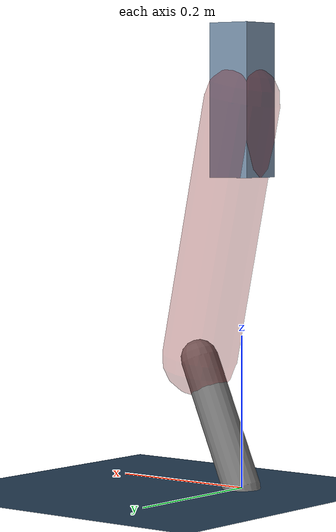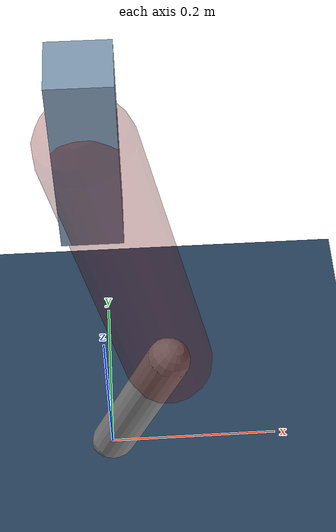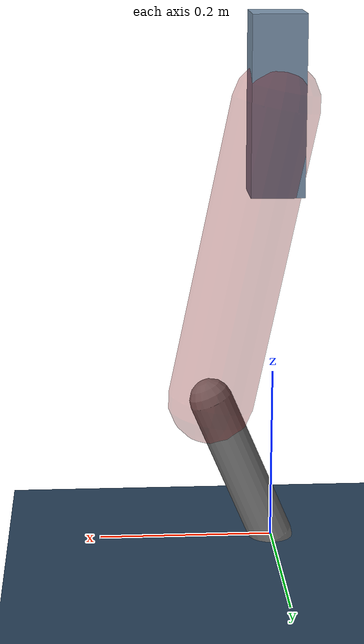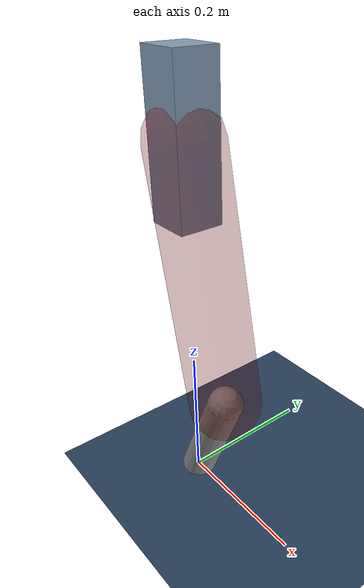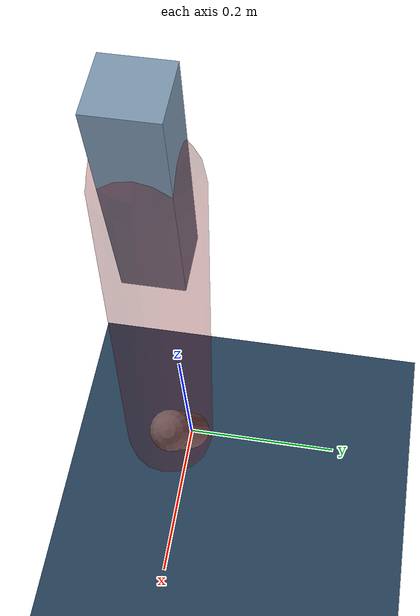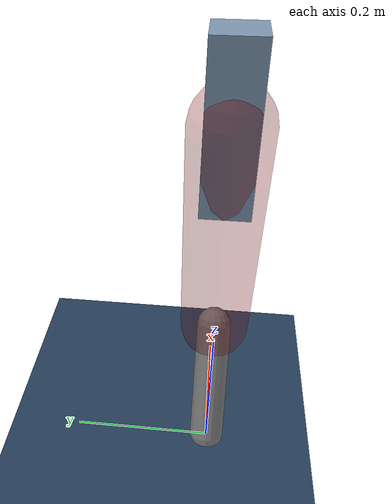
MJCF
<mujoco model="Hopper2D">
	<compiler inertiafromgeom="true" angle="radian" />
	<option timestep="0.001" integrator="implicit" cone="elliptic" solver="Newton" tolerance="1e-10" />

	<default>
		<geom contype="1" conaffinity="1" condim="3" friction="2 0.005 0.0001" solref="0.005 1" />
		<joint limited="true" damping="0.1" />
	</default>

	<asset>
		<texture name="skybox" type="skybox" builtin="gradient" rgb1=".4 .6 .8" rgb2="0 0 0" width="800" height="800" />
		<texture name="grid" type="2d" builtin="checker" rgb1=".1 .2 .3" rgb2=".2 .3 .4" width="300" height="300" mark="edge" markrgb=".2 .3 .4" />
		<material name="ground" texture="grid" texrepeat="1 1" texuniform="true" reflectance="0.1" />
		<material name="leg" rgba="0.5 0.6 0.7 1" />
	</asset>

	<worldbody>

		<geom name="floor" type="plane" size="5 5 0.25" material="ground" />

		<light directional="false" diffuse="0.8 0.8 0.8" specular="0.3 0.3 0.3" pos="0 0 2" dir="0 0 -1" />
		<light mode="targetbodycom" target="base" directional="false" diffuse="0.8 0.8 0.8" specular="0.3 0.3 0.3" pos="0 0 2" dir="0 0 -1" />

		<camera name="fixed" pos="0 -2 1" xyaxes="1 0 0 0 0 1" />
		<camera name="tracking" mode="trackcom" pos="0 -3 1" />

		<body name="root" pos="0 0 0.5072503309671599">
			<joint name="slide_x" type="slide" axis="1 0 0" range="-100 100" />
			<joint name="slide_z" type="slide" axis="0 0 1" range="0 10" />

			<body name="base" pos="0 0 0">
				<geom name="torso" type="box" size="0.03 0.03 0.1" mass="2.614" material="leg" />

				<body name="link1" pos="0 0 0" euler="0 1.3653167703287838 0">
					<joint type="hinge" axis="0 -1 0" pos="0 0 0" name="hinge1" limited="true" range="-3.14 3.14" stiffness="0" damping="0.1" />
					<geom name="thigh" type="capsule" fromto="0 0 0 0.347856683977663 0 0" size="0.05" rgba="0.5 0 0 0.3" mass="1.1206987151374566" />

					<body name="link2" pos="0.347856683977663 0 0" euler="0 0.6079757703307398 0">
						<joint type="hinge" axis="0 -1 0" pos="0 0 0" name="hinge2" limited="true" range="-3.14 3.14" stiffness="0" damping="0.1" />
						<geom name="shank" type="capsule" fromto="0 0 0 0.18119111834468565 0 0" size="0.025" mass="0.3849528946757485" />

					</body>
				</body>
			</body>
		</body>
	</worldbody>

	<actuator>
		<motor name="torque1" joint="hinge1" ctrlrange="-108.84000072886013 108.84000072886013" ctrllimited="true" gear="1" />
		<motor name="torque2" joint="hinge2" ctrlrange="-21.39540877179659 21.39540877179659" ctrllimited="true" gear="1" />
	</actuator>
</mujoco>
